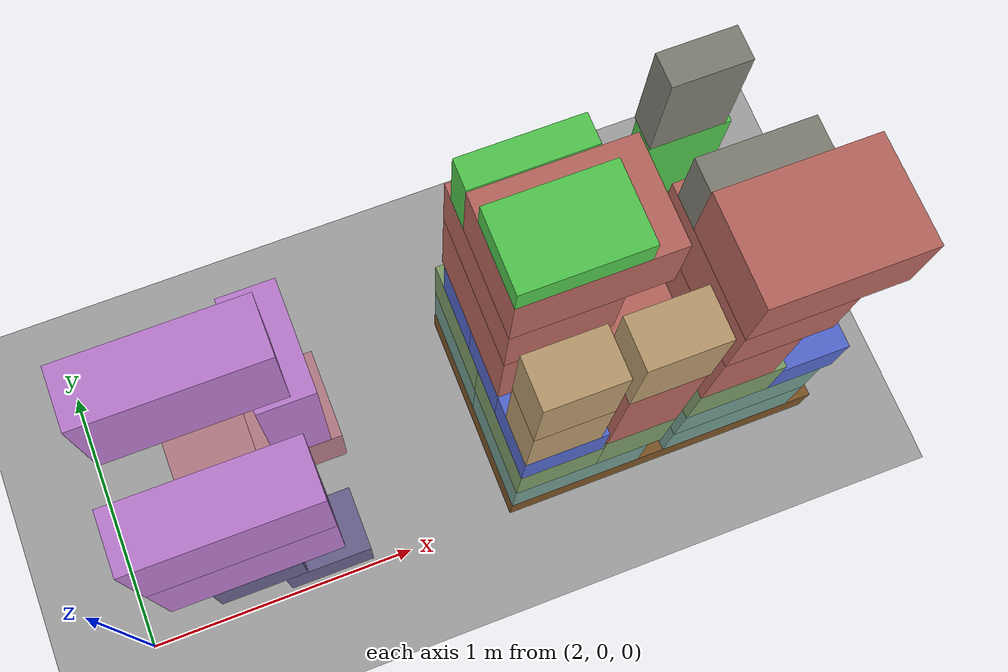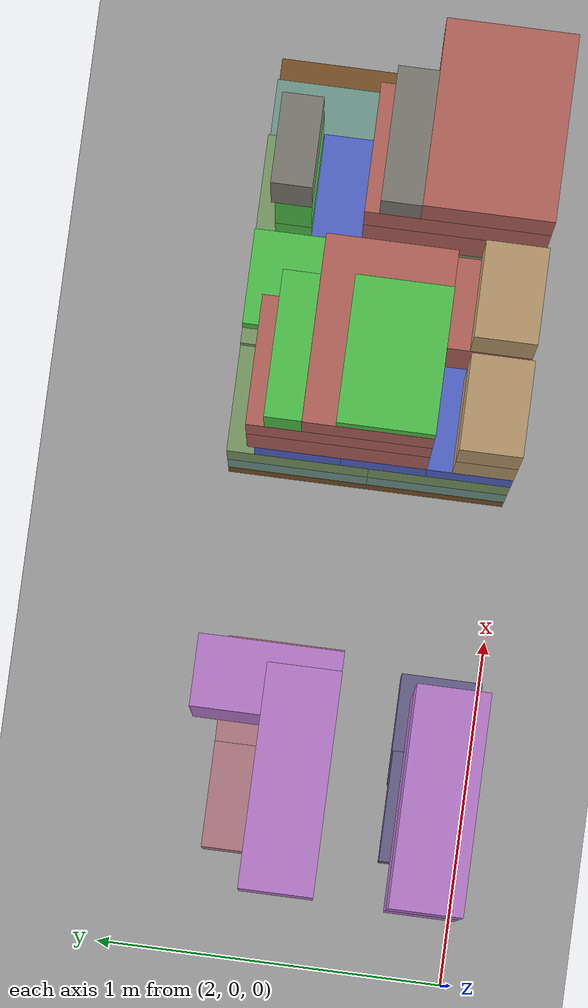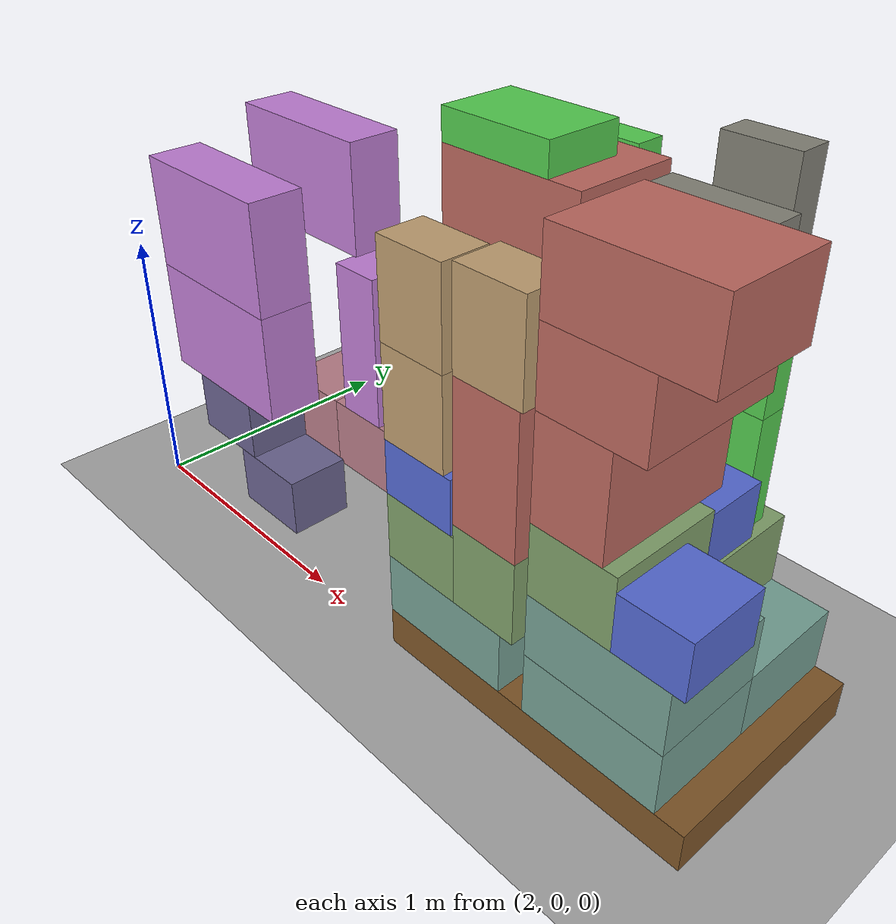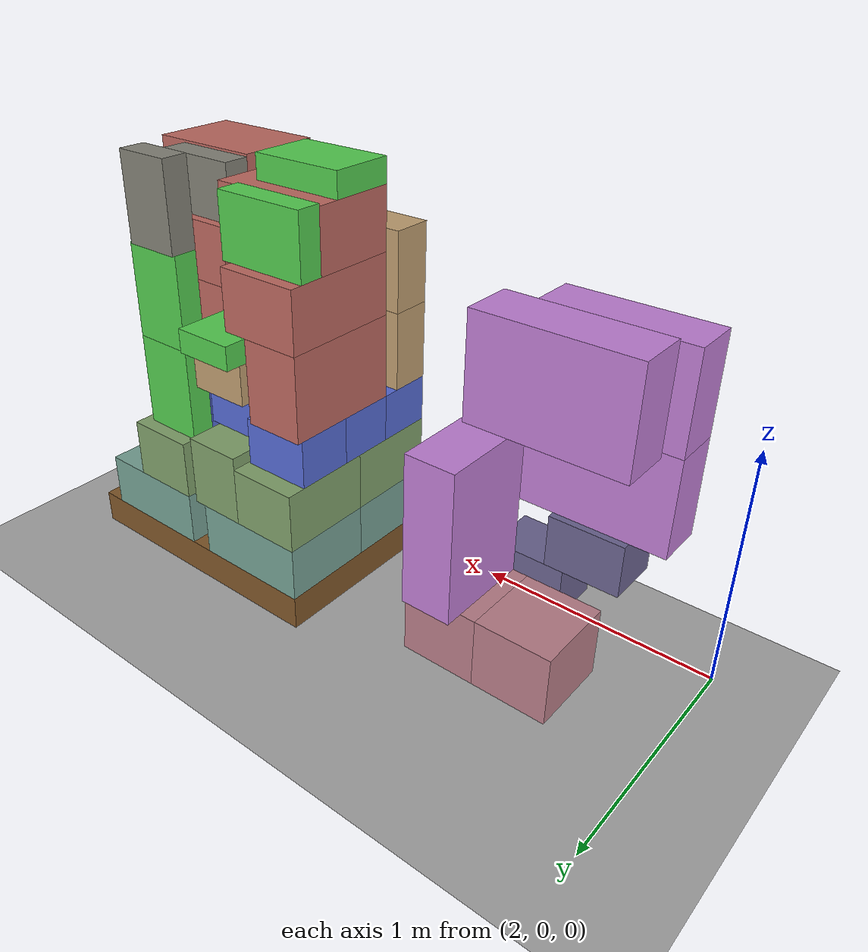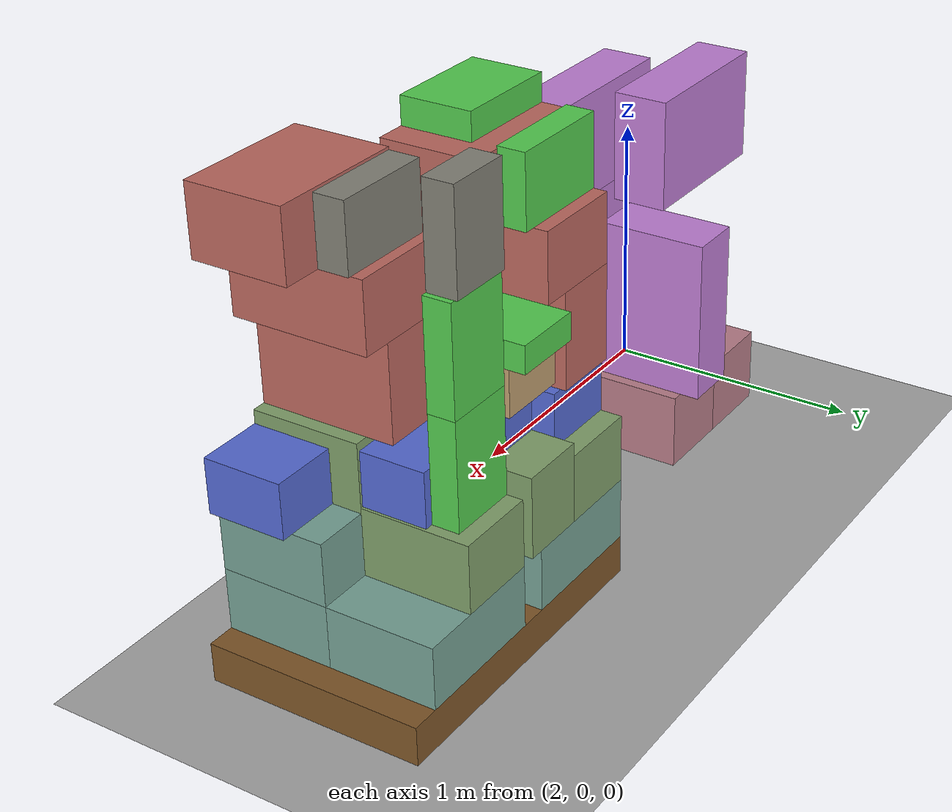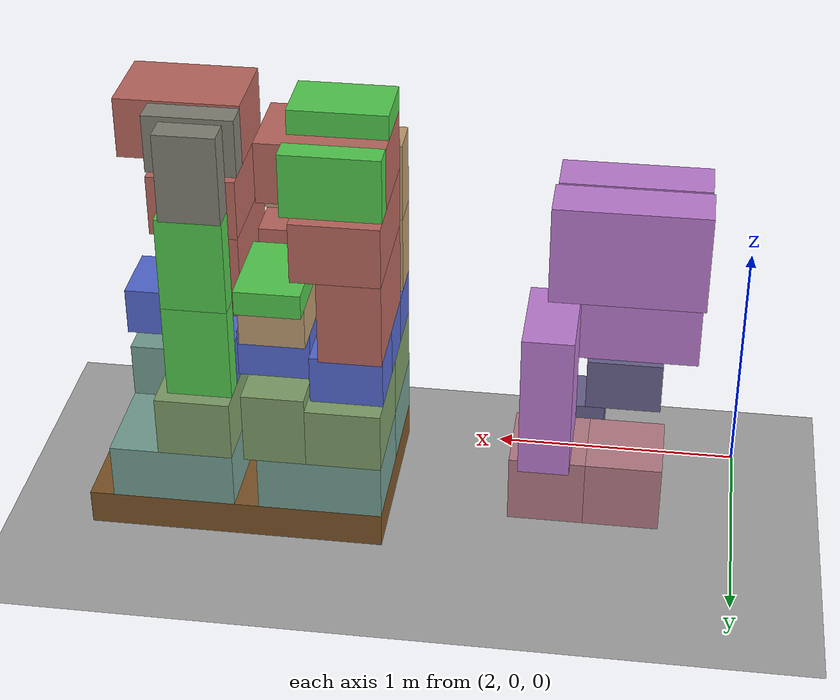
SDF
<sdf version="1.10">
 <world name="pallet_towers">
  <model name="ground_plane">
   <static>true</static>
   <link name="link">
    <collision name="collision">
     <geometry><plane><normal>0 0 1</normal><size>30 30</size></plane></geometry>
     <surface>
      <friction><ode><mu>0.35</mu><mu2>0.35</mu2></ode></friction>
      <bounce><restitution_coefficient>0</restitution_coefficient><threshold>100000</threshold></bounce>
      <contact><ode><kp>1000000</kp><kd>100</kd><max_vel>1</max_vel><min_depth>0.0005</min_depth></ode></contact>
     </surface>
    </collision>
    <visual name="visual">
     <geometry><plane><normal>0 0 1</normal><size>30 30</size></plane></geometry>
     <material><ambient>0.65 0.65 0.65 1</ambient><diffuse>0.65 0.65 0.65 1</diffuse></material>
    </visual>
   </link>
  </model>
  <model name="box_p02_0001_EGGS_004_EGGS">
   <static>false</static>
   <pose>2.45 0.565 0.284 0 0 0</pose>
   <link name="body">
    <inertial>
     <mass>18</mass>
     <inertia><ixx>0.28095</ixx><ixy>0</ixy><ixz>0</ixz><iyy>0.2526</iyy><iyz>0</iyz><izz>0.29835</izz></inertia>
    </inertial>
    <collision name="collision">
     <geometry><box><size>0.3 0.33 0.28</size></box></geometry>
     <surface>
      <friction><ode><mu>0.35</mu><mu2>0.35</mu2></ode></friction>
      <bounce><restitution_coefficient>0</restitution_coefficient><threshold>100000</threshold></bounce>
      <contact><ode><kp>1000000</kp><kd>100</kd><max_vel>1</max_vel><min_depth>0.0005</min_depth></ode></contact>
     </surface>
    </collision>
    <visual name="visual">
     <geometry><box><size>0.3 0.33 0.28</size></box></geometry>
     <material>
      <ambient>0.725490196 0.494117647 0.537254902 1</ambient>
      <diffuse>0.725490196 0.494117647 0.537254902 1</diffuse>
      <specular>0.05 0.05 0.05 1</specular>
     </material>
    </visual>
   </link>
  </model>
  <model name="box_p02_0003_EGGS_006_EGGS">
   <static>false</static>
   <pose>2.75 0.565 0.284 0 0 0</pose>
   <link name="body">
    <inertial>
     <mass>18</mass>
     <inertia><ixx>0.28095</ixx><ixy>0</ixy><ixz>0</ixz><iyy>0.2526</iyy><iyz>0</iyz><izz>0.29835</izz></inertia>
    </inertial>
    <collision name="collision">
     <geometry><box><size>0.3 0.33 0.28</size></box></geometry>
     <surface>
      <friction><ode><mu>0.35</mu><mu2>0.35</mu2></ode></friction>
      <bounce><restitution_coefficient>0</restitution_coefficient><threshold>100000</threshold></bounce>
      <contact><ode><kp>1000000</kp><kd>100</kd><max_vel>1</max_vel><min_depth>0.0005</min_depth></ode></contact>
     </surface>
    </collision>
    <visual name="visual">
     <geometry><box><size>0.3 0.33 0.28</size></box></geometry>
     <material>
      <ambient>0.725490196 0.494117647 0.537254902 1</ambient>
      <diffuse>0.725490196 0.494117647 0.537254902 1</diffuse>
      <specular>0.05 0.05 0.05 1</specular>
     </material>
    </visual>
   </link>
  </model>
  <model name="box_p02_0008_SUGAR_004_SUGAR">
   <static>false</static>
   <pose>2.705 0.115 0.254 0 0 0</pose>
   <link name="body">
    <inertial>
     <mass>10</mass>
     <inertia>
      <ixx>0.0844166667</ixx>
      <ixy>0</ixy>
      <ixz>0</ixz>
      <iyy>0.120416667</iyy>
      <iyz>0</iyz>
      <izz>0.124166667</izz>
     </inertia>
    </inertial>
    <collision name="collision">
     <geometry><box><size>0.31 0.23 0.22</size></box></geometry>
     <surface>
      <friction><ode><mu>0.35</mu><mu2>0.35</mu2></ode></friction>
      <bounce><restitution_coefficient>0</restitution_coefficient><threshold>100000</threshold></bounce>
      <contact><ode><kp>1000000</kp><kd>100</kd><max_vel>1</max_vel><min_depth>0.0005</min_depth></ode></contact>
     </surface>
    </collision>
    <visual name="visual">
     <geometry><box><size>0.31 0.23 0.22</size></box></geometry>
     <material>
      <ambient>0.419607843 0.392156863 0.564705882 1</ambient>
      <diffuse>0.419607843 0.392156863 0.564705882 1</diffuse>
      <specular>0.05 0.05 0.05 1</specular>
     </material>
    </visual>
   </link>
  </model>
  <model name="box_p02_0011_SUGAR_007_SUGAR">
   <static>false</static>
   <pose>2.475 0.115 0.474 0 0 0</pose>
   <link name="body">
    <inertial>
     <mass>10</mass>
     <inertia>
      <ixx>0.0844166667</ixx>
      <ixy>0</ixy>
      <ixz>0</ixz>
      <iyy>0.120416667</iyy>
      <iyz>0</iyz>
      <izz>0.124166667</izz>
     </inertia>
    </inertial>
    <collision name="collision">
     <geometry><box><size>0.31 0.23 0.22</size></box></geometry>
     <surface>
      <friction><ode><mu>0.35</mu><mu2>0.35</mu2></ode></friction>
      <bounce><restitution_coefficient>0</restitution_coefficient><threshold>100000</threshold></bounce>
      <contact><ode><kp>1000000</kp><kd>100</kd><max_vel>1</max_vel><min_depth>0.0005</min_depth></ode></contact>
     </surface>
    </collision>
    <visual name="visual">
     <geometry><box><size>0.31 0.23 0.22</size></box></geometry>
     <material>
      <ambient>0.419607843 0.392156863 0.564705882 1</ambient>
      <diffuse>0.419607843 0.392156863 0.564705882 1</diffuse>
      <specular>0.05 0.05 0.05 1</specular>
     </material>
    </visual>
   </link>
  </model>
  <model name="box_p02_0019_BREAD_001_BREAD">
   <static>false</static>
   <pose>2.76 0.6 0.724 0 0 0</pose>
   <link name="body">
    <inertial>
     <mass>4.5</mass>
     <inertia><ixx>0.195</ixx><ixy>0</ixy><ixz>0</ixz><iyy>0.15</iyy><iyz>0</iyz><izz>0.075</izz></inertia>
    </inertial>
    <collision name="collision">
     <geometry><box><size>0.2 0.4 0.6</size></box></geometry>
     <surface>
      <friction><ode><mu>0.35</mu><mu2>0.35</mu2></ode></friction>
      <bounce><restitution_coefficient>0</restitution_coefficient><threshold>100000</threshold></bounce>
      <contact><ode><kp>1000000</kp><kd>100</kd><max_vel>1</max_vel><min_depth>0.0005</min_depth></ode></contact>
     </surface>
    </collision>
    <visual name="visual">
     <geometry><box><size>0.2 0.4 0.6</size></box></geometry>
     <material>
      <ambient>0.756862745 0.498039216 0.839215686 1</ambient>
      <diffuse>0.756862745 0.498039216 0.839215686 1</diffuse>
      <specular>0.05 0.05 0.05 1</specular>
     </material>
    </visual>
   </link>
  </model>
  <model name="box_p02_0020_BREAD_002_BREAD">
   <static>false</static>
   <pose>2.48 0.1 0.784 0 0 0</pose>
   <link name="body">
    <inertial>
     <mass>4.5</mass>
     <inertia><ixx>0.075</ixx><ixy>0</ixy><ixz>0</ixz><iyy>0.195</iyy><iyz>0</iyz><izz>0.15</izz></inertia>
    </inertial>
    <collision name="collision">
     <geometry><box><size>0.6 0.2 0.4</size></box></geometry>
     <surface>
      <friction><ode><mu>0.35</mu><mu2>0.35</mu2></ode></friction>
      <bounce><restitution_coefficient>0</restitution_coefficient><threshold>100000</threshold></bounce>
      <contact><ode><kp>1000000</kp><kd>100</kd><max_vel>1</max_vel><min_depth>0.0005</min_depth></ode></contact>
     </surface>
    </collision>
    <visual name="visual">
     <geometry><box><size>0.6 0.2 0.4</size></box></geometry>
     <material>
      <ambient>0.756862745 0.498039216 0.839215686 1</ambient>
      <diffuse>0.756862745 0.498039216 0.839215686 1</diffuse>
      <specular>0.05 0.05 0.05 1</specular>
     </material>
    </visual>
   </link>
  </model>
  <model name="box_p02_0021_BREAD_003_BREAD">
   <static>false</static>
   <pose>2.48 0.1 1.184 0 0 0</pose>
   <link name="body">
    <inertial>
     <mass>4.5</mass>
     <inertia><ixx>0.075</ixx><ixy>0</ixy><ixz>0</ixz><iyy>0.195</iyy><iyz>0</iyz><izz>0.15</izz></inertia>
    </inertial>
    <collision name="collision">
     <geometry><box><size>0.6 0.2 0.4</size></box></geometry>
     <surface>
      <friction><ode><mu>0.35</mu><mu2>0.35</mu2></ode></friction>
      <bounce><restitution_coefficient>0</restitution_coefficient><threshold>100000</threshold></bounce>
      <contact><ode><kp>1000000</kp><kd>100</kd><max_vel>1</max_vel><min_depth>0.0005</min_depth></ode></contact>
     </surface>
    </collision>
    <visual name="visual">
     <geometry><box><size>0.6 0.2 0.4</size></box></geometry>
     <material>
      <ambient>0.756862745 0.498039216 0.839215686 1</ambient>
      <diffuse>0.756862745 0.498039216 0.839215686 1</diffuse>
      <specular>0.05 0.05 0.05 1</specular>
     </material>
    </visual>
   </link>
  </model>
  <model name="box_p02_0024_BREAD_006_BREAD">
   <static>false</static>
   <pose>2.48 0.5 1.284 0 0 0</pose>
   <link name="body">
    <inertial>
     <mass>4.5</mass>
     <inertia><ixx>0.075</ixx><ixy>0</ixy><ixz>0</ixz><iyy>0.195</iyy><iyz>0</iyz><izz>0.15</izz></inertia>
    </inertial>
    <collision name="collision">
     <geometry><box><size>0.6 0.2 0.4</size></box></geometry>
     <surface>
      <friction><ode><mu>0.35</mu><mu2>0.35</mu2></ode></friction>
      <bounce><restitution_coefficient>0</restitution_coefficient><threshold>100000</threshold></bounce>
      <contact><ode><kp>1000000</kp><kd>100</kd><max_vel>1</max_vel><min_depth>0.0005</min_depth></ode></contact>
     </surface>
    </collision>
    <visual name="visual">
     <geometry><box><size>0.6 0.2 0.4</size></box></geometry>
     <material>
      <ambient>0.756862745 0.498039216 0.839215686 1</ambient>
      <diffuse>0.756862745 0.498039216 0.839215686 1</diffuse>
      <specular>0.05 0.05 0.05 1</specular>
     </material>
    </visual>
   </link>
  </model>
  <model name="pallet_03_3">
   <static>false</static>
   <pose>4 0.4 0.072 0 0 0</pose>
   <link name="body">
    <inertial>
     <mass>25</mass>
     <inertia>
      <ixx>1.37653333</ixx>
      <ixy>0</ixy>
      <ixz>0</ixz>
      <iyy>3.0432</iyy>
      <iyz>0</iyz>
      <izz>4.33333333</izz>
     </inertia>
    </inertial>
    <collision name="collision">
     <geometry><box><size>1.2 0.8 0.144</size></box></geometry>
     <surface>
      <friction><ode><mu>0.35</mu><mu2>0.35</mu2></ode></friction>
      <bounce><restitution_coefficient>0</restitution_coefficient><threshold>100000</threshold></bounce>
      <contact><ode><kp>1000000</kp><kd>100</kd><max_vel>1</max_vel><min_depth>0.0005</min_depth></ode></contact>
     </surface>
    </collision>
    <visual name="visual">
     <geometry><box><size>1.2 0.8 0.144</size></box></geometry>
     <material>
      <ambient>0.5 0.34 0.16 1</ambient>
      <diffuse>0.5 0.34 0.16 1</diffuse>
      <specular>0.05 0.05 0.05 1</specular>
     </material>
    </visual>
   </link>
  </model>
  <model name="box_p03_0001_BANANA_003_BANANA">
   <static>false</static>
   <pose>4.25 0.6 0.259 0 0 0</pose>
   <link name="body">
    <inertial>
     <mass>18</mass>
     <inertia><ixx>0.31935</ixx><ixy>0</ixy><ixz>0</ixz><iyy>0.45435</iyy><iyz>0</iyz><izz>0.615</izz></inertia>
    </inertial>
    <collision name="collision">
     <geometry><box><size>0.5 0.4 0.23</size></box></geometry>
     <surface>
      <friction><ode><mu>0.35</mu><mu2>0.35</mu2></ode></friction>
      <bounce><restitution_coefficient>0</restitution_coefficient><threshold>100000</threshold></bounce>
      <contact><ode><kp>1000000</kp><kd>100</kd><max_vel>1</max_vel><min_depth>0.0005</min_depth></ode></contact>
     </surface>
    </collision>
    <visual name="visual">
     <geometry><box><size>0.5 0.4 0.23</size></box></geometry>
     <material>
      <ambient>0.462745098 0.635294118 0.584313725 1</ambient>
      <diffuse>0.462745098 0.635294118 0.584313725 1</diffuse>
      <specular>0.05 0.05 0.05 1</specular>
     </material>
    </visual>
   </link>
  </model>
  <model name="box_p03_0002_BANANA_004_BANANA">
   <static>false</static>
   <pose>4.25 0.2 0.259 0 0 0</pose>
   <link name="body">
    <inertial>
     <mass>18</mass>
     <inertia><ixx>0.31935</ixx><ixy>0</ixy><ixz>0</ixz><iyy>0.45435</iyy><iyz>0</iyz><izz>0.615</izz></inertia>
    </inertial>
    <collision name="collision">
     <geometry><box><size>0.5 0.4 0.23</size></box></geometry>
     <surface>
      <friction><ode><mu>0.35</mu><mu2>0.35</mu2></ode></friction>
      <bounce><restitution_coefficient>0</restitution_coefficient><threshold>100000</threshold></bounce>
      <contact><ode><kp>1000000</kp><kd>100</kd><max_vel>1</max_vel><min_depth>0.0005</min_depth></ode></contact>
     </surface>
    </collision>
    <visual name="visual">
     <geometry><box><size>0.5 0.4 0.23</size></box></geometry>
     <material>
      <ambient>0.462745098 0.635294118 0.584313725 1</ambient>
      <diffuse>0.462745098 0.635294118 0.584313725 1</diffuse>
      <specular>0.05 0.05 0.05 1</specular>
     </material>
    </visual>
   </link>
  </model>
  <model name="box_p03_0003_BANANA_005_BANANA">
   <static>false</static>
   <pose>3.65 0.6 0.259 0 0 0</pose>
   <link name="body">
    <inertial>
     <mass>18</mass>
     <inertia><ixx>0.31935</ixx><ixy>0</ixy><ixz>0</ixz><iyy>0.45435</iyy><iyz>0</iyz><izz>0.615</izz></inertia>
    </inertial>
    <collision name="collision">
     <geometry><box><size>0.5 0.4 0.23</size></box></geometry>
     <surface>
      <friction><ode><mu>0.35</mu><mu2>0.35</mu2></ode></friction>
      <bounce><restitution_coefficient>0</restitution_coefficient><threshold>100000</threshold></bounce>
      <contact><ode><kp>1000000</kp><kd>100</kd><max_vel>1</max_vel><min_depth>0.0005</min_depth></ode></contact>
     </surface>
    </collision>
    <visual name="visual">
     <geometry><box><size>0.5 0.4 0.23</size></box></geometry>
     <material>
      <ambient>0.462745098 0.635294118 0.584313725 1</ambient>
      <diffuse>0.462745098 0.635294118 0.584313725 1</diffuse>
      <specular>0.05 0.05 0.05 1</specular>
     </material>
    </visual>
   </link>
  </model>
  <model name="box_p03_0004_BANANA_006_BANANA">
   <static>false</static>
   <pose>3.65 0.2 0.259 0 0 0</pose>
   <link name="body">
    <inertial>
     <mass>18</mass>
     <inertia><ixx>0.31935</ixx><ixy>0</ixy><ixz>0</ixz><iyy>0.45435</iyy><iyz>0</iyz><izz>0.615</izz></inertia>
    </inertial>
    <collision name="collision">
     <geometry><box><size>0.5 0.4 0.23</size></box></geometry>
     <surface>
      <friction><ode><mu>0.35</mu><mu2>0.35</mu2></ode></friction>
      <bounce><restitution_coefficient>0</restitution_coefficient><threshold>100000</threshold></bounce>
      <contact><ode><kp>1000000</kp><kd>100</kd><max_vel>1</max_vel><min_depth>0.0005</min_depth></ode></contact>
     </surface>
    </collision>
    <visual name="visual">
     <geometry><box><size>0.5 0.4 0.23</size></box></geometry>
     <material>
      <ambient>0.462745098 0.635294118 0.584313725 1</ambient>
      <diffuse>0.462745098 0.635294118 0.584313725 1</diffuse>
      <specular>0.05 0.05 0.05 1</specular>
     </material>
    </visual>
   </link>
  </model>
  <model name="box_p03_0005_BANANA_007_BANANA">
   <static>false</static>
   <pose>4.25 0.2 0.489 0 0 0</pose>
   <link name="body">
    <inertial>
     <mass>18</mass>
     <inertia><ixx>0.31935</ixx><ixy>0</ixy><ixz>0</ixz><iyy>0.45435</iyy><iyz>0</iyz><izz>0.615</izz></inertia>
    </inertial>
    <collision name="collision">
     <geometry><box><size>0.5 0.4 0.23</size></box></geometry>
     <surface>
      <friction><ode><mu>0.35</mu><mu2>0.35</mu2></ode></friction>
      <bounce><restitution_coefficient>0</restitution_coefficient><threshold>100000</threshold></bounce>
      <contact><ode><kp>1000000</kp><kd>100</kd><max_vel>1</max_vel><min_depth>0.0005</min_depth></ode></contact>
     </surface>
    </collision>
    <visual name="visual">
     <geometry><box><size>0.5 0.4 0.23</size></box></geometry>
     <material>
      <ambient>0.462745098 0.635294118 0.584313725 1</ambient>
      <diffuse>0.462745098 0.635294118 0.584313725 1</diffuse>
      <specular>0.05 0.05 0.05 1</specular>
     </material>
    </visual>
   </link>
  </model>
  <model name="box_p03_0006_COFFEE_001_COFFEE">
   <static>false</static>
   <pose>4.15 0.6 0.499 0 0 0</pose>
   <link name="body">
    <inertial>
     <mass>13</mass>
     <inertia>
      <ixx>0.241041667</ixx>
      <ixy>0</ixy>
      <ixz>0</ixz>
      <iyy>0.165208333</iyy>
      <iyz>0</iyz>
      <izz>0.270833333</izz>
     </inertia>
    </inertial>
    <collision name="collision">
     <geometry><box><size>0.3 0.4 0.25</size></box></geometry>
     <surface>
      <friction><ode><mu>0.35</mu><mu2>0.35</mu2></ode></friction>
      <bounce><restitution_coefficient>0</restitution_coefficient><threshold>100000</threshold></bounce>
      <contact><ode><kp>1000000</kp><kd>100</kd><max_vel>1</max_vel><min_depth>0.0005</min_depth></ode></contact>
     </surface>
    </collision>
    <visual name="visual">
     <geometry><box><size>0.3 0.4 0.25</size></box></geometry>
     <material>
      <ambient>0.505882353 0.631372549 0.419607843 1</ambient>
      <diffuse>0.505882353 0.631372549 0.419607843 1</diffuse>
      <specular>0.05 0.05 0.05 1</specular>
     </material>
    </visual>
   </link>
  </model>
  <model name="box_p03_0007_COFFEE_002_COFFEE">
   <static>false</static>
   <pose>3.55 0.2 0.499 0 0 0</pose>
   <link name="body">
    <inertial>
     <mass>13</mass>
     <inertia>
      <ixx>0.241041667</ixx>
      <ixy>0</ixy>
      <ixz>0</ixz>
      <iyy>0.165208333</iyy>
      <iyz>0</iyz>
      <izz>0.270833333</izz>
     </inertia>
    </inertial>
    <collision name="collision">
     <geometry><box><size>0.3 0.4 0.25</size></box></geometry>
     <surface>
      <friction><ode><mu>0.35</mu><mu2>0.35</mu2></ode></friction>
      <bounce><restitution_coefficient>0</restitution_coefficient><threshold>100000</threshold></bounce>
      <contact><ode><kp>1000000</kp><kd>100</kd><max_vel>1</max_vel><min_depth>0.0005</min_depth></ode></contact>
     </surface>
    </collision>
    <visual name="visual">
     <geometry><box><size>0.3 0.4 0.25</size></box></geometry>
     <material>
      <ambient>0.505882353 0.631372549 0.419607843 1</ambient>
      <diffuse>0.505882353 0.631372549 0.419607843 1</diffuse>
      <specular>0.05 0.05 0.05 1</specular>
     </material>
    </visual>
   </link>
  </model>
  <model name="box_p03_0008_COFFEE_003_COFFEE">
   <static>false</static>
   <pose>3.55 0.6 0.499 0 0 0</pose>
   <link name="body">
    <inertial>
     <mass>13</mass>
     <inertia>
      <ixx>0.241041667</ixx>
      <ixy>0</ixy>
      <ixz>0</ixz>
      <iyy>0.165208333</iyy>
      <iyz>0</iyz>
      <izz>0.270833333</izz>
     </inertia>
    </inertial>
    <collision name="collision">
     <geometry><box><size>0.3 0.4 0.25</size></box></geometry>
     <surface>
      <friction><ode><mu>0.35</mu><mu2>0.35</mu2></ode></friction>
      <bounce><restitution_coefficient>0</restitution_coefficient><threshold>100000</threshold></bounce>
      <contact><ode><kp>1000000</kp><kd>100</kd><max_vel>1</max_vel><min_depth>0.0005</min_depth></ode></contact>
     </surface>
    </collision>
    <visual name="visual">
     <geometry><box><size>0.3 0.4 0.25</size></box></geometry>
     <material>
      <ambient>0.505882353 0.631372549 0.419607843 1</ambient>
      <diffuse>0.505882353 0.631372549 0.419607843 1</diffuse>
      <specular>0.05 0.05 0.05 1</specular>
     </material>
    </visual>
   </link>
  </model>
  <model name="box_p03_0010_COFFEE_005_COFFEE">
   <static>false</static>
   <pose>3.825 0.2 0.524 0 0 0</pose>
   <link name="body">
    <inertial>
     <mass>13</mass>
     <inertia>
      <ixx>0.270833333</ixx>
      <ixy>0</ixy>
      <ixz>0</ixz>
      <iyy>0.165208333</iyy>
      <iyz>0</iyz>
      <izz>0.241041667</izz>
     </inertia>
    </inertial>
    <collision name="collision">
     <geometry><box><size>0.25 0.4 0.3</size></box></geometry>
     <surface>
      <friction><ode><mu>0.35</mu><mu2>0.35</mu2></ode></friction>
      <bounce><restitution_coefficient>0</restitution_coefficient><threshold>100000</threshold></bounce>
      <contact><ode><kp>1000000</kp><kd>100</kd><max_vel>1</max_vel><min_depth>0.0005</min_depth></ode></contact>
     </surface>
    </collision>
    <visual name="visual">
     <geometry><box><size>0.25 0.4 0.3</size></box></geometry>
     <material>
      <ambient>0.505882353 0.631372549 0.419607843 1</ambient>
      <diffuse>0.505882353 0.631372549 0.419607843 1</diffuse>
      <specular>0.05 0.05 0.05 1</specular>
     </material>
    </visual>
   </link>
  </model>
  <model name="box_p03_0011_COFFEE_006_COFFEE">
   <static>false</static>
   <pose>3.825 0.6 0.524 0 0 0</pose>
   <link name="body">
    <inertial>
     <mass>13</mass>
     <inertia>
      <ixx>0.270833333</ixx>
      <ixy>0</ixy>
      <ixz>0</ixz>
      <iyy>0.165208333</iyy>
      <iyz>0</iyz>
      <izz>0.241041667</izz>
     </inertia>
    </inertial>
    <collision name="collision">
     <geometry><box><size>0.25 0.4 0.3</size></box></geometry>
     <surface>
      <friction><ode><mu>0.35</mu><mu2>0.35</mu2></ode></friction>
      <bounce><restitution_coefficient>0</restitution_coefficient><threshold>100000</threshold></bounce>
      <contact><ode><kp>1000000</kp><kd>100</kd><max_vel>1</max_vel><min_depth>0.0005</min_depth></ode></contact>
     </surface>
    </collision>
    <visual name="visual">
     <geometry><box><size>0.25 0.4 0.3</size></box></geometry>
     <material>
      <ambient>0.505882353 0.631372549 0.419607843 1</ambient>
      <diffuse>0.505882353 0.631372549 0.419607843 1</diffuse>
      <specular>0.05 0.05 0.05 1</specular>
     </material>
    </visual>
   </link>
  </model>
  <model name="box_p03_0012_COFFEE_007_COFFEE">
   <static>false</static>
   <pose>4.15 0.2 0.729 0 0 0</pose>
   <link name="body">
    <inertial>
     <mass>13</mass>
     <inertia>
      <ixx>0.241041667</ixx>
      <ixy>0</ixy>
      <ixz>0</ixz>
      <iyy>0.165208333</iyy>
      <iyz>0</iyz>
      <izz>0.270833333</izz>
     </inertia>
    </inertial>
    <collision name="collision">
     <geometry><box><size>0.3 0.4 0.25</size></box></geometry>
     <surface>
      <friction><ode><mu>0.35</mu><mu2>0.35</mu2></ode></friction>
      <bounce><restitution_coefficient>0</restitution_coefficient><threshold>100000</threshold></bounce>
      <contact><ode><kp>1000000</kp><kd>100</kd><max_vel>1</max_vel><min_depth>0.0005</min_depth></ode></contact>
     </surface>
    </collision>
    <visual name="visual">
     <geometry><box><size>0.3 0.4 0.25</size></box></geometry>
     <material>
      <ambient>0.505882353 0.631372549 0.419607843 1</ambient>
      <diffuse>0.505882353 0.631372549 0.419607843 1</diffuse>
      <specular>0.05 0.05 0.05 1</specular>
     </material>
    </visual>
   </link>
  </model>
  <model name="box_p03_0013_CHOCO_001_CHOCO">
   <static>false</static>
   <pose>4.42 0.145 0.704 0 0 0</pose>
   <link name="body">
    <inertial>
     <mass>6</mass>
     <inertia><ixx>0.06205</ixx><ixy>0</ixy><ixz>0</ixz><iyy>0.0488</iyy><iyz>0</iyz><izz>0.07085</izz></inertia>
    </inertial>
    <collision name="collision">
     <geometry><box><size>0.24 0.29 0.2</size></box></geometry>
     <surface>
      <friction><ode><mu>0.35</mu><mu2>0.35</mu2></ode></friction>
      <bounce><restitution_coefficient>0</restitution_coefficient><threshold>100000</threshold></bounce>
      <contact><ode><kp>1000000</kp><kd>100</kd><max_vel>1</max_vel><min_depth>0.0005</min_depth></ode></contact>
     </surface>
    </collision>
    <visual name="visual">
     <geometry><box><size>0.24 0.29 0.2</size></box></geometry>
     <material>
      <ambient>0.337254902 0.419607843 0.835294118 1</ambient>
      <diffuse>0.337254902 0.419607843 0.835294118 1</diffuse>
      <specular>0.05 0.05 0.05 1</specular>
     </material>
    </visual>
   </link>
  </model>
  <model name="box_p03_0014_CHOCO_002_CHOCO">
   <static>false</static>
   <pose>4.145 0.52 0.724 0 0 0</pose>
   <link name="body">
    <inertial>
     <mass>6</mass>
     <inertia><ixx>0.0488</ixx><ixy>0</ixy><ixz>0</ixz><iyy>0.06205</iyy><iyz>0</iyz><izz>0.07085</izz></inertia>
    </inertial>
    <collision name="collision">
     <geometry><box><size>0.29 0.24 0.2</size></box></geometry>
     <surface>
      <friction><ode><mu>0.35</mu><mu2>0.35</mu2></ode></friction>
      <bounce><restitution_coefficient>0</restitution_coefficient><threshold>100000</threshold></bounce>
      <contact><ode><kp>1000000</kp><kd>100</kd><max_vel>1</max_vel><min_depth>0.0005</min_depth></ode></contact>
     </surface>
    </collision>
    <visual name="visual">
     <geometry><box><size>0.29 0.24 0.2</size></box></geometry>
     <material>
      <ambient>0.337254902 0.419607843 0.835294118 1</ambient>
      <diffuse>0.337254902 0.419607843 0.835294118 1</diffuse>
      <specular>0.05 0.05 0.05 1</specular>
     </material>
    </visual>
   </link>
  </model>
  <model name="box_p03_0015_CHOCO_003_CHOCO">
   <static>false</static>
   <pose>3.545 0.12 0.724 0 0 0</pose>
   <link name="body">
    <inertial>
     <mass>6</mass>
     <inertia><ixx>0.0488</ixx><ixy>0</ixy><ixz>0</ixz><iyy>0.06205</iyy><iyz>0</iyz><izz>0.07085</izz></inertia>
    </inertial>
    <collision name="collision">
     <geometry><box><size>0.29 0.24 0.2</size></box></geometry>
     <surface>
      <friction><ode><mu>0.35</mu><mu2>0.35</mu2></ode></friction>
      <bounce><restitution_coefficient>0</restitution_coefficient><threshold>100000</threshold></bounce>
      <contact><ode><kp>1000000</kp><kd>100</kd><max_vel>1</max_vel><min_depth>0.0005</min_depth></ode></contact>
     </surface>
    </collision>
    <visual name="visual">
     <geometry><box><size>0.29 0.24 0.2</size></box></geometry>
     <material>
      <ambient>0.337254902 0.419607843 0.835294118 1</ambient>
      <diffuse>0.337254902 0.419607843 0.835294118 1</diffuse>
      <specular>0.05 0.05 0.05 1</specular>
     </material>
    </visual>
   </link>
  </model>
  <model name="box_p03_0016_CHOCO_004_CHOCO">
   <static>false</static>
   <pose>3.545 0.36 0.724 0 0 0</pose>
   <link name="body">
    <inertial>
     <mass>6</mass>
     <inertia><ixx>0.0488</ixx><ixy>0</ixy><ixz>0</ixz><iyy>0.06205</iyy><iyz>0</iyz><izz>0.07085</izz></inertia>
    </inertial>
    <collision name="collision">
     <geometry><box><size>0.29 0.24 0.2</size></box></geometry>
     <surface>
      <friction><ode><mu>0.35</mu><mu2>0.35</mu2></ode></friction>
      <bounce><restitution_coefficient>0</restitution_coefficient><threshold>100000</threshold></bounce>
      <contact><ode><kp>1000000</kp><kd>100</kd><max_vel>1</max_vel><min_depth>0.0005</min_depth></ode></contact>
     </surface>
    </collision>
    <visual name="visual">
     <geometry><box><size>0.29 0.24 0.2</size></box></geometry>
     <material>
      <ambient>0.337254902 0.419607843 0.835294118 1</ambient>
      <diffuse>0.337254902 0.419607843 0.835294118 1</diffuse>
      <specular>0.05 0.05 0.05 1</specular>
     </material>
    </visual>
   </link>
  </model>
  <model name="box_p03_0017_CHOCO_005_CHOCO">
   <static>false</static>
   <pose>3.545 0.6 0.724 0 0 0</pose>
   <link name="body">
    <inertial>
     <mass>6</mass>
     <inertia><ixx>0.0488</ixx><ixy>0</ixy><ixz>0</ixz><iyy>0.06205</iyy><iyz>0</iyz><izz>0.07085</izz></inertia>
    </inertial>
    <collision name="collision">
     <geometry><box><size>0.29 0.24 0.2</size></box></geometry>
     <surface>
      <friction><ode><mu>0.35</mu><mu2>0.35</mu2></ode></friction>
      <bounce><restitution_coefficient>0</restitution_coefficient><threshold>100000</threshold></bounce>
      <contact><ode><kp>1000000</kp><kd>100</kd><max_vel>1</max_vel><min_depth>0.0005</min_depth></ode></contact>
     </surface>
    </collision>
    <visual name="visual">
     <geometry><box><size>0.29 0.24 0.2</size></box></geometry>
     <material>
      <ambient>0.337254902 0.419607843 0.835294118 1</ambient>
      <diffuse>0.337254902 0.419607843 0.835294118 1</diffuse>
      <specular>0.05 0.05 0.05 1</specular>
     </material>
    </visual>
   </link>
  </model>
  <model name="box_p03_0019_CHOCO_007_CHOCO">
   <static>false</static>
   <pose>3.845 0.52 0.774 0 0 0</pose>
   <link name="body">
    <inertial>
     <mass>6</mass>
     <inertia><ixx>0.0488</ixx><ixy>0</ixy><ixz>0</ixz><iyy>0.06205</iyy><iyz>0</iyz><izz>0.07085</izz></inertia>
    </inertial>
    <collision name="collision">
     <geometry><box><size>0.29 0.24 0.2</size></box></geometry>
     <surface>
      <friction><ode><mu>0.35</mu><mu2>0.35</mu2></ode></friction>
      <bounce><restitution_coefficient>0</restitution_coefficient><threshold>100000</threshold></bounce>
      <contact><ode><kp>1000000</kp><kd>100</kd><max_vel>1</max_vel><min_depth>0.0005</min_depth></ode></contact>
     </surface>
    </collision>
    <visual name="visual">
     <geometry><box><size>0.29 0.24 0.2</size></box></geometry>
     <material>
      <ambient>0.337254902 0.419607843 0.835294118 1</ambient>
      <diffuse>0.337254902 0.419607843 0.835294118 1</diffuse>
      <specular>0.05 0.05 0.05 1</specular>
     </material>
    </visual>
   </link>
  </model>
  <model name="box_p03_0020_ONION_001_ONION">
   <static>false</static>
   <pose>3.525 0.49 0.999 0 0 0</pose>
   <link name="body">
    <inertial>
     <mass>10</mass>
     <inertia>
      <ixx>0.310416667</ixx>
      <ixy>0</ixy>
      <ixz>0</ixz>
      <iyy>0.154166667</iyy>
      <iyz>0</iyz>
      <izz>0.260416667</izz>
     </inertia>
    </inertial>
    <collision name="collision">
     <geometry><box><size>0.25 0.5 0.35</size></box></geometry>
     <surface>
      <friction><ode><mu>0.35</mu><mu2>0.35</mu2></ode></friction>
      <bounce><restitution_coefficient>0</restitution_coefficient><threshold>100000</threshold></bounce>
      <contact><ode><kp>1000000</kp><kd>100</kd><max_vel>1</max_vel><min_depth>0.0005</min_depth></ode></contact>
     </surface>
    </collision>
    <visual name="visual">
     <geometry><box><size>0.25 0.5 0.35</size></box></geometry>
     <material>
      <ambient>0.741176471 0.411764706 0.376470588 1</ambient>
      <diffuse>0.741176471 0.411764706 0.376470588 1</diffuse>
      <specular>0.05 0.05 0.05 1</specular>
     </material>
    </visual>
   </link>
  </model>
  <model name="box_p03_0021_ONION_002_ONION">
   <static>false</static>
   <pose>3.825 0.175 0.924 0 0 0</pose>
   <link name="body">
    <inertial>
     <mass>10</mass>
     <inertia>
      <ixx>0.310416667</ixx>
      <ixy>0</ixy>
      <ixz>0</ixz>
      <iyy>0.260416667</iyy>
      <iyz>0</iyz>
      <izz>0.154166667</izz>
     </inertia>
    </inertial>
    <collision name="collision">
     <geometry><box><size>0.25 0.35 0.5</size></box></geometry>
     <surface>
      <friction><ode><mu>0.35</mu><mu2>0.35</mu2></ode></friction>
      <bounce><restitution_coefficient>0</restitution_coefficient><threshold>100000</threshold></bounce>
      <contact><ode><kp>1000000</kp><kd>100</kd><max_vel>1</max_vel><min_depth>0.0005</min_depth></ode></contact>
     </surface>
    </collision>
    <visual name="visual">
     <geometry><box><size>0.25 0.35 0.5</size></box></geometry>
     <material>
      <ambient>0.741176471 0.411764706 0.376470588 1</ambient>
      <diffuse>0.741176471 0.411764706 0.376470588 1</diffuse>
      <specular>0.05 0.05 0.05 1</specular>
     </material>
    </visual>
   </link>
  </model>
  <model name="box_p03_0022_ONION_003_ONION">
   <static>false</static>
   <pose>3.575 0.49 1.299 0 0 0</pose>
   <link name="body">
    <inertial>
     <mass>10</mass>
     <inertia>
      <ixx>0.260416667</ixx>
      <ixy>0</ixy>
      <ixz>0</ixz>
      <iyy>0.154166667</iyy>
      <iyz>0</iyz>
      <izz>0.310416667</izz>
     </inertia>
    </inertial>
    <collision name="collision">
     <geometry><box><size>0.35 0.5 0.25</size></box></geometry>
     <surface>
      <friction><ode><mu>0.35</mu><mu2>0.35</mu2></ode></friction>
      <bounce><restitution_coefficient>0</restitution_coefficient><threshold>100000</threshold></bounce>
      <contact><ode><kp>1000000</kp><kd>100</kd><max_vel>1</max_vel><min_depth>0.0005</min_depth></ode></contact>
     </surface>
    </collision>
    <visual name="visual">
     <geometry><box><size>0.35 0.5 0.25</size></box></geometry>
     <material>
      <ambient>0.741176471 0.411764706 0.376470588 1</ambient>
      <diffuse>0.741176471 0.411764706 0.376470588 1</diffuse>
      <specular>0.05 0.05 0.05 1</specular>
     </material>
    </visual>
   </link>
  </model>
  <model name="box_p03_0023_ONION_004_ONION">
   <static>false</static>
   <pose>4.125 0.25 1.029 0 0 0</pose>
   <link name="body">
    <inertial>
     <mass>10</mass>
     <inertia>
      <ixx>0.310416667</ixx>
      <ixy>0</ixy>
      <ixz>0</ixz>
      <iyy>0.154166667</iyy>
      <iyz>0</iyz>
      <izz>0.260416667</izz>
     </inertia>
    </inertial>
    <collision name="collision">
     <geometry><box><size>0.25 0.5 0.35</size></box></geometry>
     <surface>
      <friction><ode><mu>0.35</mu><mu2>0.35</mu2></ode></friction>
      <bounce><restitution_coefficient>0</restitution_coefficient><threshold>100000</threshold></bounce>
      <contact><ode><kp>1000000</kp><kd>100</kd><max_vel>1</max_vel><min_depth>0.0005</min_depth></ode></contact>
     </surface>
    </collision>
    <visual name="visual">
     <geometry><box><size>0.25 0.5 0.35</size></box></geometry>
     <material>
      <ambient>0.741176471 0.411764706 0.376470588 1</ambient>
      <diffuse>0.741176471 0.411764706 0.376470588 1</diffuse>
      <specular>0.05 0.05 0.05 1</specular>
     </material>
    </visual>
   </link>
  </model>
  <model name="box_p03_0024_ONION_005_ONION">
   <static>false</static>
   <pose>4.175 0.25 1.329 0 0 0</pose>
   <link name="body">
    <inertial>
     <mass>10</mass>
     <inertia>
      <ixx>0.260416667</ixx>
      <ixy>0</ixy>
      <ixz>0</ixz>
      <iyy>0.154166667</iyy>
      <iyz>0</iyz>
      <izz>0.310416667</izz>
     </inertia>
    </inertial>
    <collision name="collision">
     <geometry><box><size>0.35 0.5 0.25</size></box></geometry>
     <surface>
      <friction><ode><mu>0.35</mu><mu2>0.35</mu2></ode></friction>
      <bounce><restitution_coefficient>0</restitution_coefficient><threshold>100000</threshold></bounce>
      <contact><ode><kp>1000000</kp><kd>100</kd><max_vel>1</max_vel><min_depth>0.0005</min_depth></ode></contact>
     </surface>
    </collision>
    <visual name="visual">
     <geometry><box><size>0.35 0.5 0.25</size></box></geometry>
     <material>
      <ambient>0.741176471 0.411764706 0.376470588 1</ambient>
      <diffuse>0.741176471 0.411764706 0.376470588 1</diffuse>
      <specular>0.05 0.05 0.05 1</specular>
     </material>
    </visual>
   </link>
  </model>
  <model name="box_p03_0025_ONION_006_ONION">
   <static>false</static>
   <pose>3.65 0.415 1.549 0 0 0</pose>
   <link name="body">
    <inertial>
     <mass>10</mass>
     <inertia>
      <ixx>0.154166667</ixx>
      <ixy>0</ixy>
      <ixz>0</ixz>
      <iyy>0.260416667</iyy>
      <iyz>0</iyz>
      <izz>0.310416667</izz>
     </inertia>
    </inertial>
    <collision name="collision">
     <geometry><box><size>0.5 0.35 0.25</size></box></geometry>
     <surface>
      <friction><ode><mu>0.35</mu><mu2>0.35</mu2></ode></friction>
      <bounce><restitution_coefficient>0</restitution_coefficient><threshold>100000</threshold></bounce>
      <contact><ode><kp>1000000</kp><kd>100</kd><max_vel>1</max_vel><min_depth>0.0005</min_depth></ode></contact>
     </surface>
    </collision>
    <visual name="visual">
     <geometry><box><size>0.5 0.35 0.25</size></box></geometry>
     <material>
      <ambient>0.741176471 0.411764706 0.376470588 1</ambient>
      <diffuse>0.741176471 0.411764706 0.376470588 1</diffuse>
      <specular>0.05 0.05 0.05 1</specular>
     </material>
    </visual>
   </link>
  </model>
  <model name="box_p03_0026_ONION_007_ONION">
   <static>false</static>
   <pose>4.25 0.175 1.579 0 0 0</pose>
   <link name="body">
    <inertial>
     <mass>10</mass>
     <inertia>
      <ixx>0.154166667</ixx>
      <ixy>0</ixy>
      <ixz>0</ixz>
      <iyy>0.260416667</iyy>
      <iyz>0</iyz>
      <izz>0.310416667</izz>
     </inertia>
    </inertial>
    <collision name="collision">
     <geometry><box><size>0.5 0.35 0.25</size></box></geometry>
     <surface>
      <friction><ode><mu>0.35</mu><mu2>0.35</mu2></ode></friction>
      <bounce><restitution_coefficient>0</restitution_coefficient><threshold>100000</threshold></bounce>
      <contact><ode><kp>1000000</kp><kd>100</kd><max_vel>1</max_vel><min_depth>0.0005</min_depth></ode></contact>
     </surface>
    </collision>
    <visual name="visual">
     <geometry><box><size>0.5 0.35 0.25</size></box></geometry>
     <material>
      <ambient>0.741176471 0.411764706 0.376470588 1</ambient>
      <diffuse>0.741176471 0.411764706 0.376470588 1</diffuse>
      <specular>0.05 0.05 0.05 1</specular>
     </material>
    </visual>
   </link>
  </model>
  <model name="box_p03_0028_HONEY_002_HONEY">
   <static>false</static>
   <pose>3.83 0.565 0.959 0 0 0</pose>
   <link name="body">
    <inertial>
     <mass>8</mass>
     <inertia>
      <ixx>0.0918666667</ixx>
      <ixy>0</ixy>
      <ixz>0</ixz>
      <iyy>0.0643333333</iyy>
      <iyz>0</iyz>
      <izz>0.117666667</izz>
     </inertia>
    </inertial>
    <collision name="collision">
     <geometry><box><size>0.26 0.33 0.17</size></box></geometry>
     <surface>
      <friction><ode><mu>0.35</mu><mu2>0.35</mu2></ode></friction>
      <bounce><restitution_coefficient>0</restitution_coefficient><threshold>100000</threshold></bounce>
      <contact><ode><kp>1000000</kp><kd>100</kd><max_vel>1</max_vel><min_depth>0.0005</min_depth></ode></contact>
     </surface>
    </collision>
    <visual name="visual">
     <geometry><box><size>0.26 0.33 0.17</size></box></geometry>
     <material>
      <ambient>0.752941176 0.623529412 0.443137255 1</ambient>
      <diffuse>0.752941176 0.623529412 0.443137255 1</diffuse>
      <specular>0.05 0.05 0.05 1</specular>
     </material>
    </visual>
   </link>
  </model>
  <model name="box_p03_0031_HONEY_005_HONEY">
   <static>false</static>
   <pose>3.53 0.085 0.989 0 0 0</pose>
   <link name="body">
    <inertial>
     <mass>8</mass>
     <inertia>
      <ixx>0.0918666667</ixx>
      <ixy>0</ixy>
      <ixz>0</ixz>
      <iyy>0.117666667</iyy>
      <iyz>0</iyz>
      <izz>0.0643333333</izz>
     </inertia>
    </inertial>
    <collision name="collision">
     <geometry><box><size>0.26 0.17 0.33</size></box></geometry>
     <surface>
      <friction><ode><mu>0.35</mu><mu2>0.35</mu2></ode></friction>
      <bounce><restitution_coefficient>0</restitution_coefficient><threshold>100000</threshold></bounce>
      <contact><ode><kp>1000000</kp><kd>100</kd><max_vel>1</max_vel><min_depth>0.0005</min_depth></ode></contact>
     </surface>
    </collision>
    <visual name="visual">
     <geometry><box><size>0.26 0.17 0.33</size></box></geometry>
     <material>
      <ambient>0.752941176 0.623529412 0.443137255 1</ambient>
      <diffuse>0.752941176 0.623529412 0.443137255 1</diffuse>
      <specular>0.05 0.05 0.05 1</specular>
     </material>
    </visual>
   </link>
  </model>
  <model name="box_p03_0032_HONEY_006_HONEY">
   <static>false</static>
   <pose>3.53 0.085 1.319 0 0 0</pose>
   <link name="body">
    <inertial>
     <mass>8</mass>
     <inertia>
      <ixx>0.0918666667</ixx>
      <ixy>0</ixy>
      <ixz>0</ixz>
      <iyy>0.117666667</iyy>
      <iyz>0</iyz>
      <izz>0.0643333333</izz>
     </inertia>
    </inertial>
    <collision name="collision">
     <geometry><box><size>0.26 0.17 0.33</size></box></geometry>
     <surface>
      <friction><ode><mu>0.35</mu><mu2>0.35</mu2></ode></friction>
      <bounce><restitution_coefficient>0</restitution_coefficient><threshold>100000</threshold></bounce>
      <contact><ode><kp>1000000</kp><kd>100</kd><max_vel>1</max_vel><min_depth>0.0005</min_depth></ode></contact>
     </surface>
    </collision>
    <visual name="visual">
     <geometry><box><size>0.26 0.17 0.33</size></box></geometry>
     <material>
      <ambient>0.752941176 0.623529412 0.443137255 1</ambient>
      <diffuse>0.752941176 0.623529412 0.443137255 1</diffuse>
      <specular>0.05 0.05 0.05 1</specular>
     </material>
    </visual>
   </link>
  </model>
  <model name="box_p03_0033_HONEY_007_HONEY">
   <static>false</static>
   <pose>3.83 0.085 1.339 0 0 0</pose>
   <link name="body">
    <inertial>
     <mass>8</mass>
     <inertia>
      <ixx>0.0918666667</ixx>
      <ixy>0</ixy>
      <ixz>0</ixz>
      <iyy>0.117666667</iyy>
      <iyz>0</iyz>
      <izz>0.0643333333</izz>
     </inertia>
    </inertial>
    <collision name="collision">
     <geometry><box><size>0.26 0.17 0.33</size></box></geometry>
     <surface>
      <friction><ode><mu>0.35</mu><mu2>0.35</mu2></ode></friction>
      <bounce><restitution_coefficient>0</restitution_coefficient><threshold>100000</threshold></bounce>
      <contact><ode><kp>1000000</kp><kd>100</kd><max_vel>1</max_vel><min_depth>0.0005</min_depth></ode></contact>
     </surface>
    </collision>
    <visual name="visual">
     <geometry><box><size>0.26 0.17 0.33</size></box></geometry>
     <material>
      <ambient>0.752941176 0.623529412 0.443137255 1</ambient>
      <diffuse>0.752941176 0.623529412 0.443137255 1</diffuse>
      <specular>0.05 0.05 0.05 1</specular>
     </material>
    </visual>
   </link>
  </model>
  <model name="box_p03_0035_YOGURT_002_YOGURT">
   <static>false</static>
   <pose>3.83 0.595 1.094 0 0 0</pose>
   <link name="body">
    <inertial>
     <mass>5</mass>
     <inertia>
      <ixx>0.0675416667</ixx>
      <ixy>0</ixy>
      <ixz>0</ixz>
      <iyy>0.0323333333</iyy>
      <iyz>0</iyz>
      <izz>0.0915416667</izz>
     </inertia>
    </inertial>
    <collision name="collision">
     <geometry><box><size>0.26 0.39 0.1</size></box></geometry>
     <surface>
      <friction><ode><mu>0.35</mu><mu2>0.35</mu2></ode></friction>
      <bounce><restitution_coefficient>0</restitution_coefficient><threshold>100000</threshold></bounce>
      <contact><ode><kp>1000000</kp><kd>100</kd><max_vel>1</max_vel><min_depth>0.0005</min_depth></ode></contact>
     </surface>
    </collision>
    <visual name="visual">
     <geometry><box><size>0.26 0.39 0.1</size></box></geometry>
     <material>
      <ambient>0.329411765 0.803921569 0.31372549 1</ambient>
      <diffuse>0.329411765 0.803921569 0.31372549 1</diffuse>
      <specular>0.05 0.05 0.05 1</specular>
     </material>
    </visual>
   </link>
  </model>
  <model name="box_p03_0037_YOGURT_004_YOGURT">
   <static>false</static>
   <pose>4.13 0.69 0.819 0 0 0</pose>
   <link name="body">
    <inertial>
     <mass>5</mass>
     <inertia>
      <ixx>0.0675416667</ixx>
      <ixy>0</ixy>
      <ixz>0</ixz>
      <iyy>0.0915416667</iyy>
      <iyz>0</iyz>
      <izz>0.0323333333</izz>
     </inertia>
    </inertial>
    <collision name="collision">
     <geometry><box><size>0.26 0.1 0.39</size></box></geometry>
     <surface>
      <friction><ode><mu>0.35</mu><mu2>0.35</mu2></ode></friction>
      <bounce><restitution_coefficient>0</restitution_coefficient><threshold>100000</threshold></bounce>
      <contact><ode><kp>1000000</kp><kd>100</kd><max_vel>1</max_vel><min_depth>0.0005</min_depth></ode></contact>
     </surface>
    </collision>
    <visual name="visual">
     <geometry><box><size>0.26 0.1 0.39</size></box></geometry>
     <material>
      <ambient>0.329411765 0.803921569 0.31372549 1</ambient>
      <diffuse>0.329411765 0.803921569 0.31372549 1</diffuse>
      <specular>0.05 0.05 0.05 1</specular>
     </material>
    </visual>
   </link>
  </model>
  <model name="box_p03_0038_YOGURT_005_YOGURT">
   <static>false</static>
   <pose>3.595 0.37 1.724 0 0 0</pose>
   <link name="body">
    <inertial>
     <mass>5</mass>
     <inertia>
      <ixx>0.0323333333</ixx>
      <ixy>0</ixy>
      <ixz>0</ixz>
      <iyy>0.0675416667</iyy>
      <iyz>0</iyz>
      <izz>0.0915416667</izz>
     </inertia>
    </inertial>
    <collision name="collision">
     <geometry><box><size>0.39 0.26 0.1</size></box></geometry>
     <surface>
      <friction><ode><mu>0.35</mu><mu2>0.35</mu2></ode></friction>
      <bounce><restitution_coefficient>0</restitution_coefficient><threshold>100000</threshold></bounce>
      <contact><ode><kp>1000000</kp><kd>100</kd><max_vel>1</max_vel><min_depth>0.0005</min_depth></ode></contact>
     </surface>
    </collision>
    <visual name="visual">
     <geometry><box><size>0.39 0.26 0.1</size></box></geometry>
     <material>
      <ambient>0.329411765 0.803921569 0.31372549 1</ambient>
      <diffuse>0.329411765 0.803921569 0.31372549 1</diffuse>
      <specular>0.05 0.05 0.05 1</specular>
     </material>
    </visual>
   </link>
  </model>
  <model name="box_p03_0039_YOGURT_006_YOGURT">
   <static>false</static>
   <pose>4.13 0.69 1.209 0 0 0</pose>
   <link name="body">
    <inertial>
     <mass>5</mass>
     <inertia>
      <ixx>0.0675416667</ixx>
      <ixy>0</ixy>
      <ixz>0</ixz>
      <iyy>0.0915416667</iyy>
      <iyz>0</iyz>
      <izz>0.0323333333</izz>
     </inertia>
    </inertial>
    <collision name="collision">
     <geometry><box><size>0.26 0.1 0.39</size></box></geometry>
     <surface>
      <friction><ode><mu>0.35</mu><mu2>0.35</mu2></ode></friction>
      <bounce><restitution_coefficient>0</restitution_coefficient><threshold>100000</threshold></bounce>
      <contact><ode><kp>1000000</kp><kd>100</kd><max_vel>1</max_vel><min_depth>0.0005</min_depth></ode></contact>
     </surface>
    </collision>
    <visual name="visual">
     <geometry><box><size>0.26 0.1 0.39</size></box></geometry>
     <material>
      <ambient>0.329411765 0.803921569 0.31372549 1</ambient>
      <diffuse>0.329411765 0.803921569 0.31372549 1</diffuse>
      <specular>0.05 0.05 0.05 1</specular>
     </material>
    </visual>
   </link>
  </model>
  <model name="box_p03_0040_YOGURT_007_YOGURT">
   <static>false</static>
   <pose>3.595 0.64 1.554 0 0 0</pose>
   <link name="body">
    <inertial>
     <mass>5</mass>
     <inertia>
      <ixx>0.0323333333</ixx>
      <ixy>0</ixy>
      <ixz>0</ixz>
      <iyy>0.0915416667</iyy>
      <iyz>0</iyz>
      <izz>0.0675416667</izz>
     </inertia>
    </inertial>
    <collision name="collision">
     <geometry><box><size>0.39 0.1 0.26</size></box></geometry>
     <surface>
      <friction><ode><mu>0.35</mu><mu2>0.35</mu2></ode></friction>
      <bounce><restitution_coefficient>0</restitution_coefficient><threshold>100000</threshold></bounce>
      <contact><ode><kp>1000000</kp><kd>100</kd><max_vel>1</max_vel><min_depth>0.0005</min_depth></ode></contact>
     </surface>
    </collision>
    <visual name="visual">
     <geometry><box><size>0.39 0.1 0.26</size></box></geometry>
     <material>
      <ambient>0.329411765 0.803921569 0.31372549 1</ambient>
      <diffuse>0.329411765 0.803921569 0.31372549 1</diffuse>
      <specular>0.05 0.05 0.05 1</specular>
     </material>
    </visual>
   </link>
  </model>
  <model name="box_p03_0041_BUTTER_001_BUTTER">
   <static>false</static>
   <pose>4.18 0.405 1.574 0 0 0</pose>
   <link name="body">
    <inertial>
     <mass>10</mass>
     <inertia>
      <ixx>0.0580833333</ixx>
      <ixy>0</ixy>
      <ixz>0</ixz>
      <iyy>0.156</iyy>
      <iyz>0</iyz>
      <izz>0.118083333</izz>
     </inertia>
    </inertial>
    <collision name="collision">
     <geometry><box><size>0.36 0.11 0.24</size></box></geometry>
     <surface>
      <friction><ode><mu>0.35</mu><mu2>0.35</mu2></ode></friction>
      <bounce><restitution_coefficient>0</restitution_coefficient><threshold>100000</threshold></bounce>
      <contact><ode><kp>1000000</kp><kd>100</kd><max_vel>1</max_vel><min_depth>0.0005</min_depth></ode></contact>
     </surface>
    </collision>
    <visual name="visual">
     <geometry><box><size>0.36 0.11 0.24</size></box></geometry>
     <material>
      <ambient>0.51372549 0.509803922 0.466666667 1</ambient>
      <diffuse>0.51372549 0.509803922 0.466666667 1</diffuse>
      <specular>0.05 0.05 0.05 1</specular>
     </material>
    </visual>
   </link>
  </model>
  <model name="box_p03_0042_BUTTER_002_BUTTER">
   <static>false</static>
   <pose>4.12 0.695 1.584 0 0 0</pose>
   <link name="body">
    <inertial>
     <mass>10</mass>
     <inertia>
      <ixx>0.118083333</ixx>
      <ixy>0</ixy>
      <ixz>0</ixz>
      <iyy>0.156</iyy>
      <iyz>0</iyz>
      <izz>0.0580833333</izz>
     </inertia>
    </inertial>
    <collision name="collision">
     <geometry><box><size>0.24 0.11 0.36</size></box></geometry>
     <surface>
      <friction><ode><mu>0.35</mu><mu2>0.35</mu2></ode></friction>
      <bounce><restitution_coefficient>0</restitution_coefficient><threshold>100000</threshold></bounce>
      <contact><ode><kp>1000000</kp><kd>100</kd><max_vel>1</max_vel><min_depth>0.0005</min_depth></ode></contact>
     </surface>
    </collision>
    <visual name="visual">
     <geometry><box><size>0.24 0.11 0.36</size></box></geometry>
     <material>
      <ambient>0.51372549 0.509803922 0.466666667 1</ambient>
      <diffuse>0.51372549 0.509803922 0.466666667 1</diffuse>
      <specular>0.05 0.05 0.05 1</specular>
     </material>
    </visual>
   </link>
  </model>
 </world>
</sdf>
